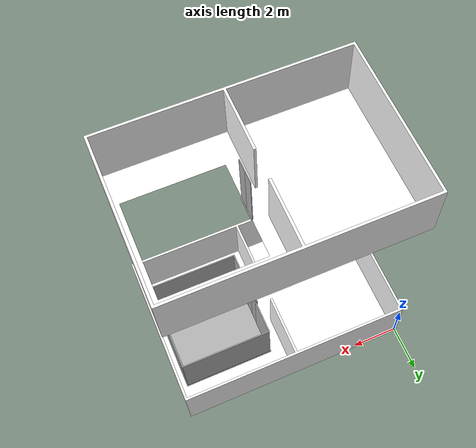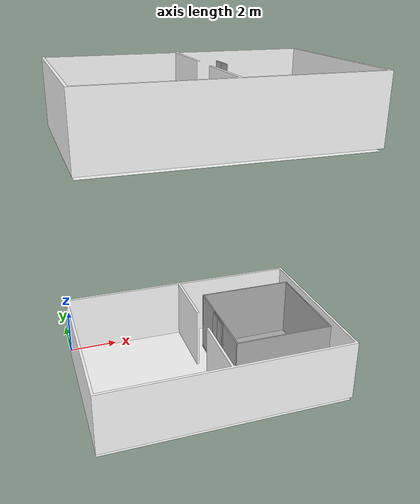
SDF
<sdf version="1.7">
 <world name="sim_world">
  <physics name="10ms" type="ode">
   <max_step_size>0.01</max_step_size>
   <real_time_factor>1.0</real_time_factor>
  </physics>
  <plugin filename="gz-sim-physics-system" name="gz::sim::systems::Physics"/>
  <plugin filename="gz-sim-user-commands-system" name="gz::sim::systems::UserCommands"/>
  <plugin filename="gz-sim-scene-broadcaster-system" name="gz::sim::systems::SceneBroadcaster"/>
  <plugin filename="libdoor.so" name="door"/>
  <plugin filename="liblift.so" name="lift"/>
  <scene><ambient>1 1 1</ambient><background>0.8 0.8 0.8</background><grid>false</grid></scene>
  <light type="directional" name="sun">
   <pose>0 0 10 0 0 0</pose>
   <diffuse>1 1 1 1</diffuse>
   <specular>0.2 0.2 0.2 1</specular>
   <attenuation>
    <range>1000</range>
    <constant>0.09</constant>
    <linear>0.001</linear>
    <quadratic>0.001</quadratic>
   </attenuation>
   <direction>-0.5 0.1 -0.9</direction>
  </light>
  <include><name>test1_L1</name><uri>model://test1_L1</uri></include>
  <include><name>test1_L2</name><uri>model://test1_L2</uri><pose>0 0 10.0 0 0 0</pose></include>
  <model name="ShaftDoor_lift1_L1_lift1_door">
   <pose>5.616666666666667 -3.3333333333333335 0.0 0 0 1.57</pose>
   <link name="right_door">
    <pose>0.25 0 1.25 0 0 0</pose>
    <visual name="right_door_visual">
     <geometry><box><size>0.5 0.03 2.5</size></box></geometry>
     <material>
      <ambient>0.5 0.5 0.5 1</ambient>
      <diffuse>0.7 0.7 0.7 1</diffuse>
      <specular>0.6 0.6 0.6 1</specular>
      <emissive>0.1 0.1 0.1 1</emissive>
     </material>
    </visual>
    <collision name="right_door_collision">
     <geometry><box><size>0.5 0.03 2.5</size></box></geometry>
     <surface><contact><collide_bitmask>0x02</collide_bitmask></contact></surface>
    </collision>
   </link>
   <link name="left_door">
    <pose>-0.25 0 1.25 0 0 0</pose>
    <visual name="left_door_visual">
     <geometry><box><size>0.5 0.03 2.5</size></box></geometry>
     <material>
      <ambient>0.5 0.5 0.5 1</ambient>
      <diffuse>0.7 0.7 0.7 1</diffuse>
      <specular>0.6 0.6 0.6 1</specular>
      <emissive>0.1 0.1 0.1 1</emissive>
     </material>
    </visual>
    <collision name="left_door_collision">
     <geometry><box><size>0.5 0.03 2.5</size></box></geometry>
     <surface><contact><collide_bitmask>0x02</collide_bitmask></contact></surface>
    </collision>
   </link>
   <joint name="right_joint" type="prismatic">
    <parent>world</parent>
    <child>right_door</child>
    <axis><xyz>1 0 0</xyz><limit><lower>0</lower><upper>0.5</upper></limit></axis>
   </joint>
   <joint name="left_joint" type="prismatic">
    <parent>world</parent>
    <child>left_door</child>
    <axis><xyz>1 0 0</xyz><limit><lower>-0.5</lower><upper>0</upper></limit></axis>
   </joint>
   <link name="ramp">
    <pose>0 0 -0.025 0 0 0</pose>
    <visual name="ramp_visual">
     <geometry><box><size>1.0 0.1 0.05</size></box></geometry>
     <material>
      <ambient>0.5 0.5 0.5 1</ambient>
      <diffuse>0.7 0.7 0.7 1</diffuse>
      <specular>0.6 0.6 0.6 1</specular>
      <emissive>0.1 0.1 0.1 1</emissive>
     </material>
    </visual>
    <collision name="ramp_collision">
     <geometry><box><size>1.0 0.1 0.05</size></box></geometry>
     <surface><contact><collide_bitmask>0x02</collide_bitmask></contact></surface>
    </collision>
   </link>
   <joint name="ramp_joint" type="fixed"><parent>world</parent><child>ramp</child></joint>
   <plugin name="register_component" filename="libregister_component.so">
    <component name="Door">
     <v_max_door>0.3</v_max_door>
     <a_max_door>0.2</a_max_door>
     <a_nom_door>0.1</a_nom_door>
     <dx_min_door>0.0001</dx_min_door>
     <f_max_door>35.0</f_max_door>
     <door left_joint_name="left_joint" name="ShaftDoor_lift1_L1_lift1_door" right_joint_name="right_joint" type="DoubleSlidingDoor"/>
    </component>
   </plugin>
  </model>
  <model name="ShaftDoor_lift1_L2_lift1_door">
   <pose>5.616666666666667 -3.3333333333333335 10.0 0 0 1.57</pose>
   <link name="right_door">
    <pose>0.25 0 1.25 0 0 0</pose>
    <visual name="right_door_visual">
     <geometry><box><size>0.5 0.03 2.5</size></box></geometry>
     <material>
      <ambient>0.5 0.5 0.5 1</ambient>
      <diffuse>0.7 0.7 0.7 1</diffuse>
      <specular>0.6 0.6 0.6 1</specular>
      <emissive>0.1 0.1 0.1 1</emissive>
     </material>
    </visual>
    <collision name="right_door_collision">
     <geometry><box><size>0.5 0.03 2.5</size></box></geometry>
     <surface><contact><collide_bitmask>0x02</collide_bitmask></contact></surface>
    </collision>
   </link>
   <link name="left_door">
    <pose>-0.25 0 1.25 0 0 0</pose>
    <visual name="left_door_visual">
     <geometry><box><size>0.5 0.03 2.5</size></box></geometry>
     <material>
      <ambient>0.5 0.5 0.5 1</ambient>
      <diffuse>0.7 0.7 0.7 1</diffuse>
      <specular>0.6 0.6 0.6 1</specular>
      <emissive>0.1 0.1 0.1 1</emissive>
     </material>
    </visual>
    <collision name="left_door_collision">
     <geometry><box><size>0.5 0.03 2.5</size></box></geometry>
     <surface><contact><collide_bitmask>0x02</collide_bitmask></contact></surface>
    </collision>
   </link>
   <joint name="right_joint" type="prismatic">
    <parent>world</parent>
    <child>right_door</child>
    <axis><xyz>1 0 0</xyz><limit><lower>0</lower><upper>0.5</upper></limit></axis>
   </joint>
   <joint name="left_joint" type="prismatic">
    <parent>world</parent>
    <child>left_door</child>
    <axis><xyz>1 0 0</xyz><limit><lower>-0.5</lower><upper>0</upper></limit></axis>
   </joint>
   <link name="ramp">
    <pose>0 0 -0.025 0 0 0</pose>
    <visual name="ramp_visual">
     <geometry><box><size>1.0 0.1 0.05</size></box></geometry>
     <material>
      <ambient>0.5 0.5 0.5 1</ambient>
      <diffuse>0.7 0.7 0.7 1</diffuse>
      <specular>0.6 0.6 0.6 1</specular>
      <emissive>0.1 0.1 0.1 1</emissive>
     </material>
    </visual>
    <collision name="ramp_collision">
     <geometry><box><size>1.0 0.1 0.05</size></box></geometry>
     <surface><contact><collide_bitmask>0x02</collide_bitmask></contact></surface>
    </collision>
   </link>
   <joint name="ramp_joint" type="fixed"><parent>world</parent><child>ramp</child></joint>
   <plugin name="register_component" filename="libregister_component.so">
    <component name="Door">
     <v_max_door>0.3</v_max_door>
     <a_max_door>0.2</a_max_door>
     <a_nom_door>0.1</a_nom_door>
     <dx_min_door>0.0001</dx_min_door>
     <f_max_door>35.0</f_max_door>
     <door left_joint_name="left_joint" name="ShaftDoor_lift1_L2_lift1_door" right_joint_name="right_joint" type="DoubleSlidingDoor"/>
    </component>
   </plugin>
  </model>
  <model name="lift1">
   <link name="platform">
    <inertial>
     <mass>1200</mass>
     <inertia><ixx>1600.2500000000002</ixx><iyy>1600.2500000000002</iyy><izz>3200.0</izz></inertia>
    </inertial>
    <visual name="floor_visual">
     <pose>0 0 -0.025 0 0 0</pose>
     <geometry><box><size>4.0 4.0 0.05</size></box></geometry>
     <material>
      <ambient>0.5 0.5 0.5 1</ambient>
      <diffuse>0.7 0.7 0.7 1</diffuse>
      <specular>0.6 0.6 0.6 1</specular>
      <emissive>0.1 0.1 0.1 1</emissive>
     </material>
    </visual>
    <collision name="floor_collision">
     <pose>0 0 -0.025 0 0 0</pose>
     <geometry><box><size>4.0 4.0 0.05</size></box></geometry>
     <surface><contact><collide_bitmask>0x01</collide_bitmask></contact></surface>
    </collision>
    <visual name="frontwall1_visual">
     <pose>0.0 1.975 1.25 0 0 0</pose>
     <geometry><box><size>4.0 0.05 2.5</size></box></geometry>
     <material>
      <ambient>0.5 0.5 0.5 1</ambient>
      <diffuse>0.7 0.7 0.7 1</diffuse>
      <specular>0.6 0.6 0.6 1</specular>
      <emissive>0.1 0.1 0.1 1</emissive>
     </material>
    </visual>
    <collision name="frontwall1_collision">
     <pose>0.0 1.975 1.25 0 0 0</pose>
     <geometry><box><size>4.0 0.05 2.5</size></box></geometry>
     <surface><contact><collide_bitmask>0x01</collide_bitmask></contact></surface>
    </collision>
    <visual name="backwall1_visual">
     <pose>0.0 -1.975 1.25 0 0 0</pose>
     <geometry><box><size>4.0 0.05 2.5</size></box></geometry>
     <material>
      <ambient>0.5 0.5 0.5 1</ambient>
      <diffuse>0.7 0.7 0.7 1</diffuse>
      <specular>0.6 0.6 0.6 1</specular>
      <emissive>0.1 0.1 0.1 1</emissive>
     </material>
    </visual>
    <collision name="backwall1_collision">
     <pose>0.0 -1.975 1.25 0 0 0</pose>
     <geometry><box><size>4.0 0.05 2.5</size></box></geometry>
     <surface><contact><collide_bitmask>0x01</collide_bitmask></contact></surface>
    </collision>
    <visual name="leftwall1_visual">
     <pose>-1.975 -1.225 1.25 0 0 1.5707963267948966</pose>
     <geometry><box><size>1.45 0.05 2.5</size></box></geometry>
     <material>
      <ambient>0.5 0.5 0.5 1</ambient>
      <diffuse>0.7 0.7 0.7 1</diffuse>
      <specular>0.6 0.6 0.6 1</specular>
      <emissive>0.1 0.1 0.1 1</emissive>
     </material>
    </visual>
    <collision name="leftwall1_collision">
     <pose>-1.975 -1.225 1.25 0 0 1.5707963267948966</pose>
     <geometry><box><size>1.45 0.05 2.5</size></box></geometry>
     <surface><contact><collide_bitmask>0x01</collide_bitmask></contact></surface>
    </collision>
    <visual name="leftwall2_visual">
     <pose>-1.975 1.225 1.25 0 0 1.5707963267948966</pose>
     <geometry><box><size>1.45 0.05 2.5</size></box></geometry>
     <material>
      <ambient>0.5 0.5 0.5 1</ambient>
      <diffuse>0.7 0.7 0.7 1</diffuse>
      <specular>0.6 0.6 0.6 1</specular>
      <emissive>0.1 0.1 0.1 1</emissive>
     </material>
    </visual>
    <collision name="leftwall2_collision">
     <pose>-1.975 1.225 1.25 0 0 1.5707963267948966</pose>
     <geometry><box><size>1.45 0.05 2.5</size></box></geometry>
     <surface><contact><collide_bitmask>0x01</collide_bitmask></contact></surface>
    </collision>
    <visual name="rightwall1_visual">
     <pose>1.975 0.0 1.25 0 0 1.5707963267948966</pose>
     <geometry><box><size>3.9 0.05 2.5</size></box></geometry>
     <material>
      <ambient>0.5 0.5 0.5 1</ambient>
      <diffuse>0.7 0.7 0.7 1</diffuse>
      <specular>0.6 0.6 0.6 1</specular>
      <emissive>0.1 0.1 0.1 1</emissive>
     </material>
    </visual>
    <collision name="rightwall1_collision">
     <pose>1.975 0.0 1.25 0 0 1.5707963267948966</pose>
     <geometry><box><size>3.9 0.05 2.5</size></box></geometry>
     <surface><contact><collide_bitmask>0x01</collide_bitmask></contact></surface>
    </collision>
   </link>
   <joint name="cabin_joint" type="prismatic">
    <parent>world</parent>
    <child>platform</child>
    <axis><xyz>0 0 1</xyz></axis>
   </joint>
   <model name="CabinDoor_lift1_lift1_door">
    <pose>-1.975 0.0 0 0 0 1.57</pose>
    <link name="right_door">
     <pose>0.25 0 1.25 0 0 0</pose>
     <visual name="right_door_visual">
      <geometry><box><size>0.5 0.03 2.5</size></box></geometry>
      <material>
       <ambient>0.5 0.5 0.5 1</ambient>
       <diffuse>0.7 0.7 0.7 1</diffuse>
       <specular>0.6 0.6 0.6 1</specular>
       <emissive>0.1 0.1 0.1 1</emissive>
      </material>
     </visual>
     <collision name="right_door_collision">
      <geometry><box><size>0.5 0.03 2.5</size></box></geometry>
      <surface><contact><collide_bitmask>0x02</collide_bitmask></contact></surface>
     </collision>
    </link>
    <link name="left_door">
     <pose>-0.25 0 1.25 0 0 0</pose>
     <visual name="left_door_visual">
      <geometry><box><size>0.5 0.03 2.5</size></box></geometry>
      <material>
       <ambient>0.5 0.5 0.5 1</ambient>
       <diffuse>0.7 0.7 0.7 1</diffuse>
       <specular>0.6 0.6 0.6 1</specular>
       <emissive>0.1 0.1 0.1 1</emissive>
      </material>
     </visual>
     <collision name="left_door_collision">
      <geometry><box><size>0.5 0.03 2.5</size></box></geometry>
      <surface><contact><collide_bitmask>0x02</collide_bitmask></contact></surface>
     </collision>
    </link>
    <plugin name="register_component" filename="libregister_component.so">
     <component name="Door">
      <v_max_door>0.3</v_max_door>
      <a_max_door>0.2</a_max_door>
      <a_nom_door>0.1</a_nom_door>
      <dx_min_door>0.0001</dx_min_door>
      <f_max_door>35.0</f_max_door>
      <door left_joint_name="CabinDoor_lift1_lift1_door_left_joint" name="CabinDoor_lift1_lift1_door" right_joint_name="CabinDoor_lift1_lift1_door_right_joint" type="DoubleSlidingDoor"/>
     </component>
    </plugin>
   </model>
   <joint name="CabinDoor_lift1_lift1_door_right_joint" type="prismatic">
    <parent>platform</parent>
    <child>CabinDoor_lift1_lift1_door::right_door</child>
    <axis><xyz>1 0 0</xyz><limit><lower>0</lower><upper>0.5</upper></limit></axis>
   </joint>
   <joint name="CabinDoor_lift1_lift1_door_left_joint" type="prismatic">
    <parent>platform</parent>
    <child>CabinDoor_lift1_lift1_door::left_door</child>
    <axis><xyz>1 0 0</xyz><limit><lower>-0.5</lower><upper>0</upper></limit></axis>
   </joint>
   <plugin name="register_component" filename="libregister_component.so">
    <component name="Lift">
     <lift_name>lift1</lift_name>
     <floor name="L1" elevation="0.0">
      <door_pair cabin_door="CabinDoor_lift1_lift1_door" shaft_door="ShaftDoor_lift1_L1_lift1_door"/>
     </floor>
     <floor name="L2" elevation="10.0">
      <door_pair cabin_door="CabinDoor_lift1_lift1_door" shaft_door="ShaftDoor_lift1_L2_lift1_door"/>
     </floor>
     <initial_floor>L1</initial_floor>
     <v_max_cabin>2.0</v_max_cabin>
     <a_max_cabin>1.2</a_max_cabin>
     <a_nom_cabin>1.0</a_nom_cabin>
     <dx_min_cabin>0.001</dx_min_cabin>
     <f_max_cabin>25323.0</f_max_cabin>
     <cabin_joint_name>cabin_joint</cabin_joint_name>
    </component>
   </plugin>
   <pose>7.666666666666667 -3.3333333333333335 0 0 0 0.0</pose>
  </model>
  <plugin name="register_component" filename="libregister_component.so">
   <component name="Chargers">
    <rmf_charger name="tinyRobot1_charger" x="3.3333333333333335" y="-3.3333333333333335" z="0.0"/>
   </component>
  </plugin>
 </world>
</sdf>

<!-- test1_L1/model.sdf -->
<sdf version="1.7">
  <model name="test1_L1">
    <static>true</static>
    <link name="floor_1">
      <visual name="visual">
        <geometry>
          <mesh>
            <uri>model://test1_L1/meshes/floor_1.obj</uri>
          </mesh>
        </geometry>
        <material>
          <diffuse>1.0 1.0 1.0</diffuse>
          <specular>0.1 0.1 0.1</specular>
          <pbr>
            <metal>
              <metalness>0.0</metalness>
              <albedo_map>model://test1_L1/meshes/blue_linoleum.png</albedo_map>
            </metal>
          </pbr>
          <script>
            <uri>model://test1_L1/meshes/</uri>
            <name>floor_1_Diffuse</name>
          </script>
        </material>
      </visual>
      <collision name="collision">
        <geometry>
          <mesh>
            <uri>model://test1_L1/meshes/floor_1.obj</uri>
          </mesh>
        </geometry>
        <surface>
          <contact>
            <collide_bitmask>0x01</collide_bitmask>
          </contact>
        </surface>
      </collision>
    </link>
    <link name="wall_1">
      <visual name="wall_1">
        <geometry>
          <mesh>
            <uri>model://test1_L1/meshes/wall_1.obj</uri>
          </mesh>
        </geometry>
        <transparency>0.0</transparency>
        <material>
          <diffuse>1.0 1.0 1.0</diffuse>
          <specular>0.1 0.1 0.1</specular>
          <pbr>
            <metal>
              <metalness>0.0</metalness>
              <albedo_map>model://test1_L1/meshes/default.png</albedo_map>
            </metal>
          </pbr>
          <script>
            <uri>model://test1_L1/meshes/</uri>
            <name>wall_1_Diffuse</name>
          </script>
        </material>
      </visual>
      <collision name="collision">
        <geometry>
          <mesh>
            <uri>model://test1_L1/meshes/wall_1.obj</uri>
          </mesh>
        </geometry>
        <surface>
          <contact>
            <collide_bitmask>0x01</collide_bitmask>
          </contact>
        </surface>
      </collision>
      <pose>-0.05000000000000021 -6.716666666666668 0 0 0 0</pose>
    </link>
  </model>
</sdf>

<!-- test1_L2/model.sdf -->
<sdf version="1.7">
  <model name="test1_L2">
    <static>true</static>
    <link name="floor_1">
      <visual name="visual">
        <geometry>
          <mesh>
            <uri>model://test1_L2/meshes/floor_1.obj</uri>
          </mesh>
        </geometry>
        <material>
          <diffuse>1.0 1.0 1.0</diffuse>
          <specular>0.1 0.1 0.1</specular>
          <pbr>
            <metal>
              <metalness>0.0</metalness>
              <albedo_map>model://test1_L2/meshes/blue_linoleum.png</albedo_map>
            </metal>
          </pbr>
          <script>
            <uri>model://test1_L2/meshes/</uri>
            <name>floor_1_Diffuse</name>
          </script>
        </material>
      </visual>
      <collision name="collision">
        <geometry>
          <mesh>
            <uri>model://test1_L2/meshes/floor_1.obj</uri>
          </mesh>
        </geometry>
        <surface>
          <contact>
            <collide_bitmask>0x01</collide_bitmask>
          </contact>
        </surface>
      </collision>
    </link>
    <link name="wall_1">
      <visual name="wall_1">
        <geometry>
          <mesh>
            <uri>model://test1_L2/meshes/wall_1.obj</uri>
          </mesh>
        </geometry>
        <transparency>0.0</transparency>
        <material>
          <diffuse>1.0 1.0 1.0</diffuse>
          <specular>0.1 0.1 0.1</specular>
          <pbr>
            <metal>
              <metalness>0.0</metalness>
              <albedo_map>model://test1_L2/meshes/default.png</albedo_map>
            </metal>
          </pbr>
          <script>
            <uri>model://test1_L2/meshes/</uri>
            <name>wall_1_Diffuse</name>
          </script>
        </material>
      </visual>
      <collision name="collision">
        <geometry>
          <mesh>
            <uri>model://test1_L2/meshes/wall_1.obj</uri>
          </mesh>
        </geometry>
        <surface>
          <contact>
            <collide_bitmask>0x01</collide_bitmask>
          </contact>
        </surface>
      </collision>
      <pose>-0.08301053764101385 -6.7595879295769254 0 0 0 0</pose>
    </link>
  </model>
</sdf>
